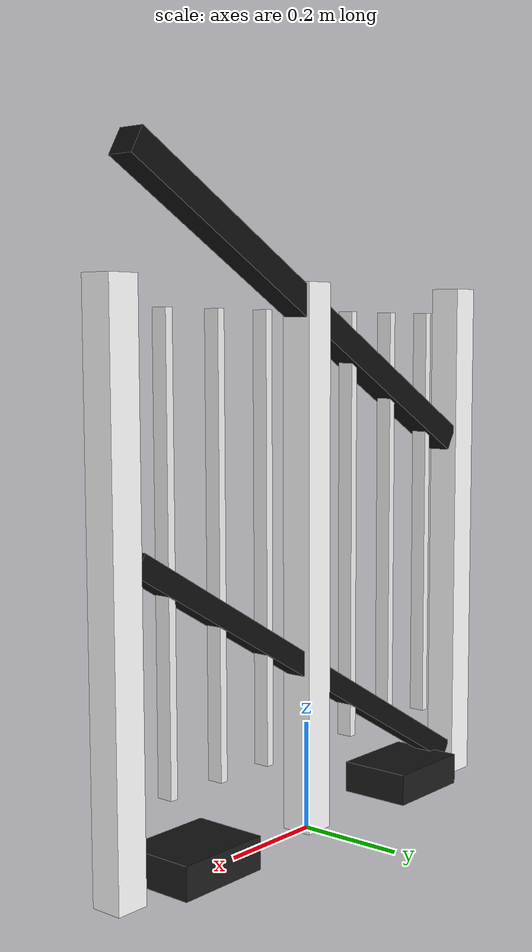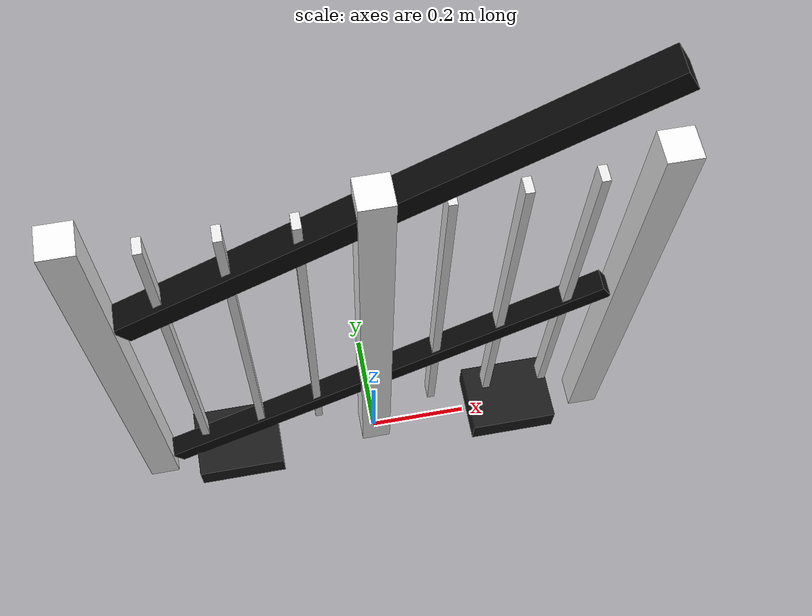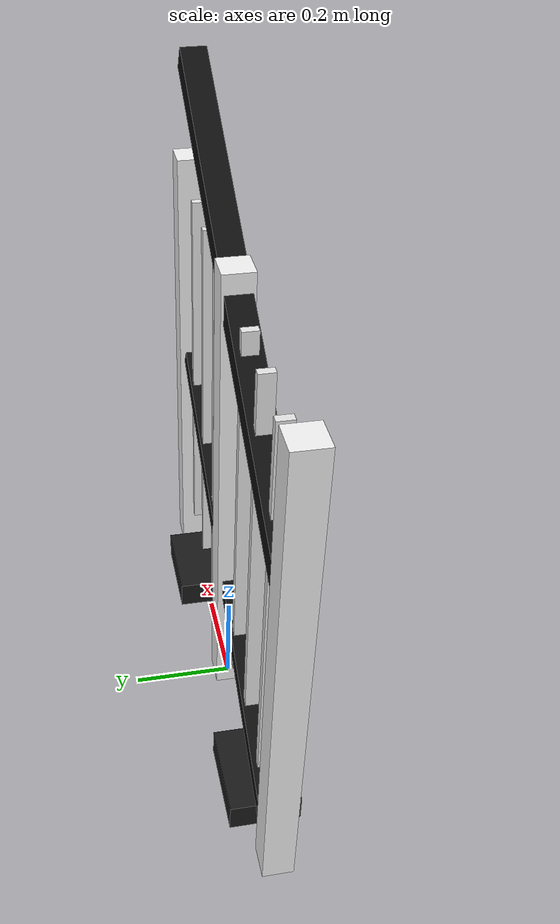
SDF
<?xml version="1.0"?>
<sdf version="1.7">
  <model name="guardrail_slope_upright_posts_1m">
    <static>true</static>

    <link name="guardrail_link">
      <pose>0 0 0 0 0 0</pose>

      <!-- ====== PARAMETERS (edit here) ====== -->
      <!-- NOTE: SDF has no variables, so just edit the numbers below -->
      <!-- ANGLE_RAD = 0.523599 (30deg). We'll use -0.523599 for "down" by default. -->

      <!-- ==========================
           COLLISION (lightweight)
           ========================== -->

      <!-- Upright posts collision (white posts) -->
      <collision name="col_post_left">
        <pose>-0.47 0 0.50 0 0 0</pose>
        <geometry><box><size>0.06 0.06 1.00</size></box></geometry>
      </collision>
      <collision name="col_post_mid">
        <pose>0.00 0 0.50 0 0 0</pose>
        <geometry><box><size>0.06 0.06 1.00</size></box></geometry>
      </collision>
      <collision name="col_post_right">
        <pose>0.47 0 0.50 0 0 0</pose>
        <geometry><box><size>0.06 0.06 1.00</size></box></geometry>
      </collision>

      <!-- Feet pads collision -->
      <collision name="col_foot_left">
        <pose>-0.30 0 0.03 0 0 0</pose>
        <geometry><box><size>0.18 0.14 0.06</size></box></geometry>
      </collision>
      <collision name="col_foot_right">
        <pose>0.30 0 0.03 0 0 0</pose>
        <geometry><box><size>0.18 0.14 0.06</size></box></geometry>
      </collision>

      <!-- Sloped handrail collision (black bar only) -->
      <!-- DOWN along +X: pitch = -0.523599 -->
      <collision name="col_handrail_sloped">
        <pose>0 0 0.95 0 -0.523599 0</pose>
        <geometry>
          <box><size>1.00 0.05 0.05</size></box>
        </geometry>
        <surface>
          <friction>
            <ode><mu>1.2</mu><mu2>1.2</mu2></ode>
          </friction>
        </surface>
      </collision>

      <!-- Optional: sloped lower rail (원하면 켜고, 아니면 삭제해도 됨) -->
      <collision name="col_lowerrail_sloped">
        <pose>0 0 0.30 0 -0.523599 0</pose>
        <geometry>
          <box><size>1.00 0.04 0.04</size></box>
        </geometry>
      </collision>

      <!-- ==========================
           VISUAL
           ========================== -->

      <!-- White upright posts -->
      <visual name="vis_post_left">
        <pose>-0.47 0 0.50 0 0 0</pose>
        <geometry><box><size>0.06 0.06 1.00</size></box></geometry>
        <material>
          <ambient>0.85 0.85 0.85 1</ambient>
          <diffuse>0.95 0.95 0.95 1</diffuse>
          <specular>0.10 0.10 0.10 1</specular>
        </material>
      </visual>

      <visual name="vis_post_mid">
        <pose>0.00 0 0.50 0 0 0</pose>
        <geometry><box><size>0.06 0.06 1.00</size></box></geometry>
        <material>
          <ambient>0.85 0.85 0.85 1</ambient>
          <diffuse>0.95 0.95 0.95 1</diffuse>
          <specular>0.10 0.10 0.10 1</specular>
        </material>
      </visual>

      <visual name="vis_post_right">
        <pose>0.47 0 0.50 0 0 0</pose>
        <geometry><box><size>0.06 0.06 1.00</size></box></geometry>
        <material>
          <ambient>0.85 0.85 0.85 1</ambient>
          <diffuse>0.95 0.95 0.95 1</diffuse>
          <specular>0.10 0.10 0.10 1</specular>
        </material>
      </visual>

      <!-- Feet pads (dark gray) -->
      <visual name="vis_foot_left">
        <pose>-0.30 0 0.03 0 0 0</pose>
        <geometry><box><size>0.18 0.14 0.06</size></box></geometry>
        <material>
          <ambient>0.06 0.06 0.06 1</ambient>
          <diffuse>0.10 0.10 0.10 1</diffuse>
        </material>
      </visual>

      <visual name="vis_foot_right">
        <pose>0.30 0 0.03 0 0 0</pose>
        <geometry><box><size>0.18 0.14 0.06</size></box></geometry>
        <material>
          <ambient>0.06 0.06 0.06 1</ambient>
          <diffuse>0.10 0.10 0.10 1</diffuse>
        </material>
      </visual>

      <!-- Black sloped handrail (people grab this) -->
      <visual name="vis_handrail_sloped">
        <pose>0 0 0.95 0 -0.523599 0</pose>
        <geometry><box><size>1.00 0.05 0.05</size></box></geometry>
        <material>
          <ambient>0.02 0.02 0.02 1</ambient>
          <diffuse>0.05 0.05 0.05 1</diffuse>
          <specular>0.25 0.25 0.25 1</specular>
        </material>
      </visual>

      <!-- Optional: black sloped lower rail -->
      <visual name="vis_lowerrail_sloped">
        <pose>0 0 0.30 0 -0.523599 0</pose>
        <geometry><box><size>1.00 0.04 0.04</size></box></geometry>
        <material>
          <ambient>0.02 0.02 0.02 1</ambient>
          <diffuse>0.05 0.05 0.05 1</diffuse>
          <specular>0.25 0.25 0.25 1</specular>
        </material>
      </visual>

      <!-- Vertical thin bars between rails (keep upright) -->
      <visual name="vis_bar_01"><pose>-0.36 0 0.55 0 0 0</pose><geometry><box><size>0.015 0.03 0.80</size></box></geometry><material><diffuse>0.90 0.90 0.90 1</diffuse></material></visual>
      <visual name="vis_bar_02"><pose>-0.24 0 0.55 0 0 0</pose><geometry><box><size>0.015 0.03 0.80</size></box></geometry><material><diffuse>0.90 0.90 0.90 1</diffuse></material></visual>
      <visual name="vis_bar_03"><pose>-0.12 0 0.55 0 0 0</pose><geometry><box><size>0.015 0.03 0.80</size></box></geometry><material><diffuse>0.90 0.90 0.90 1</diffuse></material></visual>
      <visual name="vis_bar_04"><pose>0.00  0 0.55 0 0 0</pose><geometry><box><size>0.015 0.03 0.80</size></box></geometry><material><diffuse>0.90 0.90 0.90 1</diffuse></material></visual>
      <visual name="vis_bar_05"><pose>0.12  0 0.55 0 0 0</pose><geometry><box><size>0.015 0.03 0.80</size></box></geometry><material><diffuse>0.90 0.90 0.90 1</diffuse></material></visual>
      <visual name="vis_bar_06"><pose>0.24  0 0.55 0 0 0</pose><geometry><box><size>0.015 0.03 0.80</size></box></geometry><material><diffuse>0.90 0.90 0.90 1</diffuse></material></visual>
      <visual name="vis_bar_07"><pose>0.36  0 0.55 0 0 0</pose><geometry><box><size>0.015 0.03 0.80</size></box></geometry><material><diffuse>0.90 0.90 0.90 1</diffuse></material></visual>
      <visual name="vis_bar_08"><pose>0.48  0 0.55 0 0 0</pose><geometry><box><size>0.015 0.03 0.80</size></box></geometry><material><diffuse>0.90 0.90 0.90 1</diffuse></material></visual>

      <self_collide>false</self_collide>
      <enable_wind>false</enable_wind>
      <kinematic>false</kinematic>
    </link>
  </model>
</sdf>
